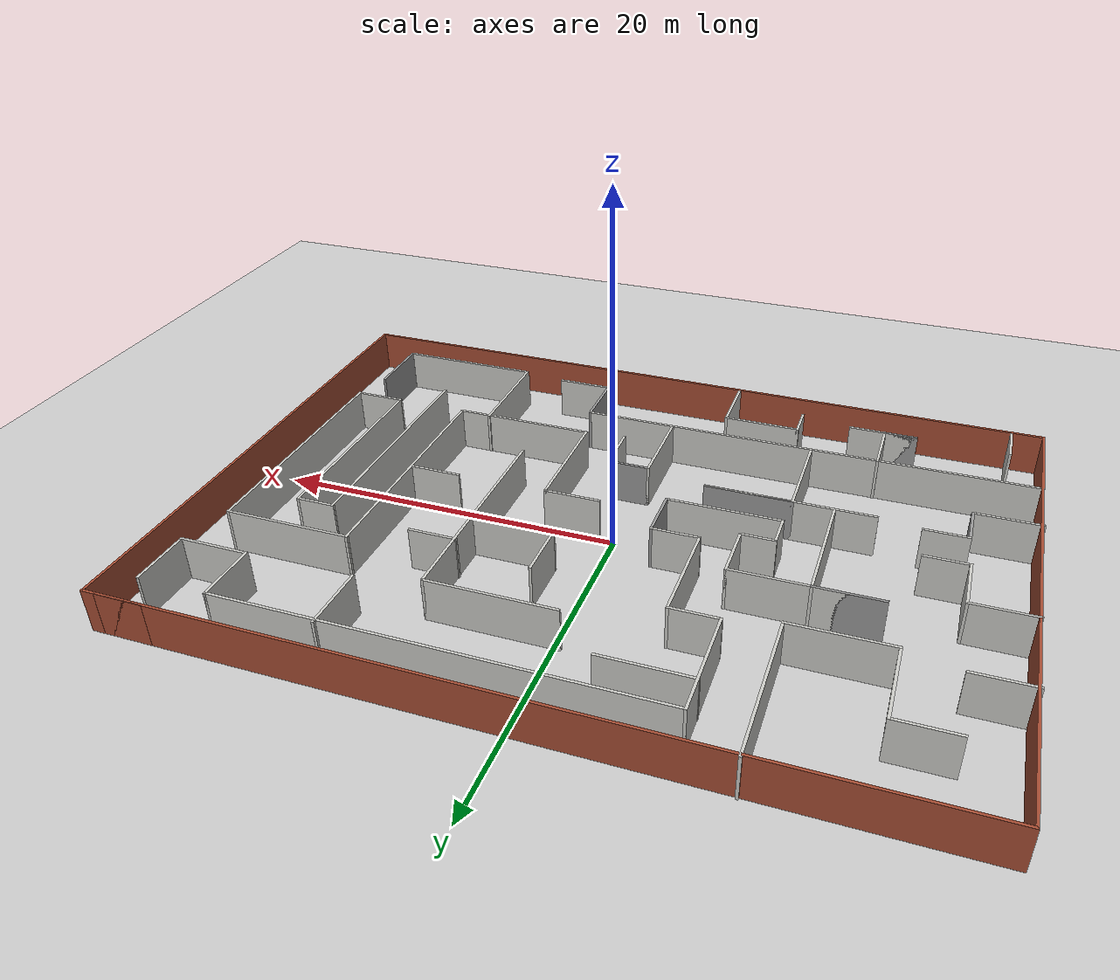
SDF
<sdf version="1.7">
 <world name="default">
  <light name="sun" type="directional">
   <pose>0 0 10 0 -0 0</pose>
   <diffuse>0.8 0.8 0.8 1</diffuse>
   <specular>0.2 0.2 0.2 1</specular>
   <attenuation>
    <range>1000</range>
    <constant>0.9</constant>
    <linear>0.01</linear>
    <quadratic>0.001</quadratic>
   </attenuation>
   <direction>-0.5 0.1 -0.9</direction>
   <spot><inner_angle>0</inner_angle><outer_angle>0</outer_angle><falloff>0</falloff></spot>
  </light>
  <model name="ground_plane">
   <static>1</static>
   <link name="link">
    <collision name="collision">
     <geometry><plane><normal>0 0 1</normal><size>100 100</size></plane></geometry>
     <surface><friction><ode><mu>100</mu><mu2>50</mu2></ode></friction></surface>
    </collision>
    <visual name="visual">
     <cast_shadows>0</cast_shadows>
     <geometry><plane><normal>0 0 1</normal><size>100 100</size></plane></geometry>
     <material>
      <script><uri>file://media/materials/scripts/gazebo.material</uri><name>Gazebo/Grey</name></script>
     </material>
    </visual>
   </link>
  </model>
  <gravity>0 0 -9.8</gravity>
  <magnetic_field>6e-06 2.3e-05 -4.2e-05</magnetic_field>
  <atmosphere type="adiabatic"/>
  <physics type="ode">
   <max_step_size>0.001</max_step_size>
   <real_time_factor>1</real_time_factor>
   <real_time_update_rate>1000</real_time_update_rate>
  </physics>
  <scene><ambient>0.4 0.4 0.4 1</ambient><background>0.7 0.7 0.7 1</background><shadows>1</shadows></scene>
  <audio><device>default</device></audio>
  <spherical_coordinates>
   <surface_model>EARTH_WGS84</surface_model>
   <latitude_deg>0</latitude_deg>
   <longitude_deg>0</longitude_deg>
   <elevation>0</elevation>
   <heading_deg>0</heading_deg>
  </spherical_coordinates>
  <model name="Maze_bt">
   <link name="Wall_100">
    <collision name="Wall_100_Collision">
     <geometry><box><size>5 0.15 2.5</size></box></geometry>
     <pose>0 0 1.25 0 -0 0</pose>
    </collision>
    <visual name="Wall_100_Visual">
     <pose>0 0 1.25 0 -0 0</pose>
     <geometry><box><size>5 0.15 2.5</size></box></geometry>
     <material>
      <script><uri>file://media/materials/scripts/gazebo.material</uri><name>Gazebo/CeilingTiled</name></script>
      <ambient>1 1 1 1</ambient>
     </material>
     <meta><layer>0</layer></meta>
    </visual>
    <pose>-5.29776 11.2419 0 0 -0 0</pose>
   </link>
   <link name="Wall_102">
    <collision name="Wall_102_Collision">
     <geometry><box><size>3 0.15 2.5</size></box></geometry>
     <pose>0 0 1.25 0 -0 0</pose>
    </collision>
    <visual name="Wall_102_Visual">
     <pose>0 0 1.25 0 -0 0</pose>
     <geometry><box><size>3 0.15 2.5</size></box></geometry>
     <material>
      <script><uri>file://media/materials/scripts/gazebo.material</uri><name>Gazebo/CeilingTiled</name></script>
      <ambient>1 1 1 1</ambient>
     </material>
     <meta><layer>0</layer></meta>
    </visual>
    <pose>10.6344 -0.214633 0 0 -0 3.14159</pose>
   </link>
   <link name="Wall_12">
    <collision name="Wall_12_Collision">
     <geometry><box><size>3.5 0.15 2.5</size></box></geometry>
     <pose>0 0 1.25 0 -0 0</pose>
    </collision>
    <visual name="Wall_12_Visual">
     <pose>0 0 1.25 0 -0 0</pose>
     <geometry><box><size>3.5 0.15 2.5</size></box></geometry>
     <material>
      <script><uri>file://media/materials/scripts/gazebo.material</uri><name>Gazebo/Bricks</name></script>
      <ambient>1 1 1 1</ambient>
     </material>
     <meta><layer>0</layer></meta>
    </visual>
    <pose>20.1781 14.8749 0 0 -0 3.14159</pose>
   </link>
   <link name="Wall_14">
    <collision name="Wall_14_Collision">
     <geometry><box><size>30 0.15 2.5</size></box></geometry>
     <pose>0 0 1.25 0 -0 0</pose>
    </collision>
    <visual name="Wall_14_Visual">
     <pose>0 0 1.25 0 -0 0</pose>
     <geometry><box><size>30 0.15 2.5</size></box></geometry>
     <material>
      <script><uri>file://media/materials/scripts/gazebo.material</uri><name>Gazebo/Bricks</name></script>
      <ambient>1 1 1 1</ambient>
     </material>
     <meta><layer>0</layer></meta>
    </visual>
    <pose>21.8531 -0.050149 0 0 -0 -1.5708</pose>
   </link>
   <link name="Wall_15">
    <collision name="Wall_15_Collision">
     <geometry><box><size>43.75 0.15 2.5</size></box></geometry>
     <pose>0 0 1.25 0 -0 0</pose>
    </collision>
    <visual name="Wall_15_Visual">
     <pose>0 0 1.25 0 -0 0</pose>
     <geometry><box><size>43.75 0.15 2.5</size></box></geometry>
     <material>
      <script><uri>file://media/materials/scripts/gazebo.material</uri><name>Gazebo/Bricks</name></script>
      <ambient>1 1 1 1</ambient>
     </material>
     <meta><layer>0</layer></meta>
    </visual>
    <pose>0.053126 -14.9751 0 0 -0 3.14159</pose>
   </link>
   <link name="Wall_16">
    <collision name="Wall_16_Collision">
     <geometry><box><size>30 0.15 2.5</size></box></geometry>
     <pose>0 0 1.25 0 -0 0</pose>
    </collision>
    <visual name="Wall_16_Visual">
     <pose>0 0 1.25 0 -0 0</pose>
     <geometry><box><size>30 0.15 2.5</size></box></geometry>
     <material>
      <script><uri>file://media/materials/scripts/gazebo.material</uri><name>Gazebo/Bricks</name></script>
      <ambient>1 1 1 1</ambient>
     </material>
     <meta><layer>0</layer></meta>
    </visual>
    <pose>-21.7469 -0.050149 0 0 -0 1.5708</pose>
   </link>
   <link name="Wall_18">
    <collision name="Wall_18_Collision">
     <geometry><box><size>8.75 0.15 2.5</size></box></geometry>
     <pose>0 0 1.25 0 -0 0</pose>
    </collision>
    <visual name="Wall_18_Visual">
     <pose>0 0 1.25 0 -0 0</pose>
     <geometry><box><size>8.75 0.15 2.5</size></box></geometry>
     <material>
      <script><uri>file://media/materials/scripts/gazebo.material</uri><name>Gazebo/CeilingTiled</name></script>
      <ambient>1 1 1 1</ambient>
     </material>
     <meta><layer>0</layer></meta>
    </visual>
    <pose>-10.4675 10.6752 0 0 -0 -1.5708</pose>
   </link>
   <link name="Wall_19">
    <collision name="Wall_19_Collision">
     <geometry><box><size>5.5 0.15 2.5</size></box></geometry>
     <pose>0 0 1.25 0 -0 0</pose>
    </collision>
    <visual name="Wall_19_Visual">
     <pose>0 0 1.25 0 -0 0</pose>
     <geometry><box><size>5.5 0.15 2.5</size></box></geometry>
     <material>
      <script><uri>file://media/materials/scripts/gazebo.material</uri><name>Gazebo/CeilingTiled</name></script>
      <ambient>1 1 1 1</ambient>
     </material>
     <meta><layer>0</layer></meta>
    </visual>
    <pose>-13.1425 6.37515 0 0 -0 3.14159</pose>
   </link>
   <link name="Wall_20">
    <collision name="Wall_20_Collision">
     <geometry><box><size>4.75 0.15 2.5</size></box></geometry>
     <pose>0 0 1.25 0 -0 0</pose>
    </collision>
    <visual name="Wall_20_Visual">
     <pose>0 0 1.25 0 -0 0</pose>
     <geometry><box><size>4.75 0.15 2.5</size></box></geometry>
     <material>
      <script><uri>file://media/materials/scripts/gazebo.material</uri><name>Gazebo/CeilingTiled</name></script>
      <ambient>1 1 1 1</ambient>
     </material>
     <meta><layer>0</layer></meta>
    </visual>
    <pose>-15.8175 8.67515 0 0 -0 1.5708</pose>
   </link>
   <link name="Wall_21">
    <collision name="Wall_21_Collision">
     <geometry><box><size>3.25 0.15 2.5</size></box></geometry>
     <pose>0 0 1.25 0 -0 0</pose>
    </collision>
    <visual name="Wall_21_Visual">
     <pose>0 0 1.25 0 -0 0</pose>
     <geometry><box><size>3.25 0.15 2.5</size></box></geometry>
     <material>
      <script><uri>file://media/materials/scripts/gazebo.material</uri><name>Gazebo/CeilingTiled</name></script>
      <ambient>1 1 1 1</ambient>
     </material>
     <meta><layer>0</layer></meta>
    </visual>
    <pose>-17.3675 10.9752 0 0 -0 3.14159</pose>
   </link>
   <link name="Wall_23">
    <collision name="Wall_23_Collision">
     <geometry><box><size>3.25 0.15 2.5</size></box></geometry>
     <pose>0 0 1.25 0 -0 0</pose>
    </collision>
    <visual name="Wall_23_Visual">
     <pose>0 0 1.25 0 -0 0</pose>
     <geometry><box><size>3.25 0.15 2.5</size></box></geometry>
     <material>
      <script><uri>file://media/materials/scripts/gazebo.material</uri><name>Gazebo/CeilingTiled</name></script>
      <ambient>1 1 1 1</ambient>
     </material>
     <meta><layer>0</layer></meta>
    </visual>
    <pose>-20.3002 7.03806 0 0 -0 0</pose>
   </link>
   <link name="Wall_25">
    <collision name="Wall_25_Collision">
     <geometry><box><size>3.5 0.15 2.5</size></box></geometry>
     <pose>0 0 1.25 0 -0 0</pose>
    </collision>
    <visual name="Wall_25_Visual">
     <pose>0 0 1.25 0 -0 0</pose>
     <geometry><box><size>3.5 0.15 2.5</size></box></geometry>
     <material>
      <script><uri>file://media/materials/scripts/gazebo.material</uri><name>Gazebo/CeilingTiled</name></script>
      <ambient>1 1 1 1</ambient>
     </material>
     <meta><layer>0</layer></meta>
    </visual>
    <pose>-20.1136 2.17735 0 0 -0 0</pose>
   </link>
   <link name="Wall_26">
    <collision name="Wall_26_Collision">
     <geometry><box><size>3.25 0.15 2.5</size></box></geometry>
     <pose>0 0 1.25 0 -0 0</pose>
    </collision>
    <visual name="Wall_26_Visual">
     <pose>0 0 1.25 0 -0 0</pose>
     <geometry><box><size>3.25 0.15 2.5</size></box></geometry>
     <material>
      <script><uri>file://media/materials/scripts/gazebo.material</uri><name>Gazebo/CeilingTiled</name></script>
      <ambient>1 1 1 1</ambient>
     </material>
     <meta><layer>0</layer></meta>
    </visual>
    <pose>-18.4386 0.627354 0 0 -0 -1.5708</pose>
   </link>
   <link name="Wall_27">
    <collision name="Wall_27_Collision">
     <geometry><box><size>2.5 0.15 2.5</size></box></geometry>
     <pose>0 0 1.25 0 -0 0</pose>
    </collision>
    <visual name="Wall_27_Visual">
     <pose>0 0 1.25 0 -0 0</pose>
     <geometry><box><size>2.5 0.15 2.5</size></box></geometry>
     <material>
      <script><uri>file://media/materials/scripts/gazebo.material</uri><name>Gazebo/CeilingTiled</name></script>
      <ambient>1 1 1 1</ambient>
     </material>
     <meta><layer>0</layer></meta>
    </visual>
    <pose>-17.2636 -0.922646 0 0 -0 0</pose>
   </link>
   <link name="Wall_30">
    <collision name="Wall_30_Collision">
     <geometry><box><size>3.75 0.15 2.5</size></box></geometry>
     <pose>0 0 1.25 0 -0 0</pose>
    </collision>
    <visual name="Wall_30_Visual">
     <pose>0 0 1.25 0 -0 0</pose>
     <geometry><box><size>3.75 0.15 2.5</size></box></geometry>
     <material>
      <script><uri>file://media/materials/scripts/gazebo.material</uri><name>Gazebo/CeilingTiled</name></script>
      <ambient>1 1 1 1</ambient>
     </material>
     <meta><layer>0</layer></meta>
    </visual>
    <pose>-20.0531 -5.59136 0 0 -0 0</pose>
   </link>
   <link name="Wall_31">
    <collision name="Wall_31_Collision">
     <geometry><box><size>2.5 0.15 2.5</size></box></geometry>
     <pose>0 0 1.25 0 -0 0</pose>
    </collision>
    <visual name="Wall_31_Visual">
     <pose>0 0 1.25 0 -0 0</pose>
     <geometry><box><size>2.5 0.15 2.5</size></box></geometry>
     <material>
      <script><uri>file://media/materials/scripts/gazebo.material</uri><name>Gazebo/Grey</name></script>
      <ambient>1 1 1 1</ambient>
     </material>
     <meta><layer>0</layer></meta>
    </visual>
    <pose>-18.2531 -4.41636 0 0 -0 1.5708</pose>
   </link>
   <link name="Wall_32">
    <collision name="Wall_32_Collision">
     <geometry><box><size>2.5 0.15 2.5</size></box></geometry>
     <pose>0 0 1.25 0 -0 0</pose>
    </collision>
    <visual name="Wall_32_Visual">
     <pose>0 0 1.25 0 -0 0</pose>
     <geometry><box><size>2.5 0.15 2.5</size></box></geometry>
     <material>
      <script><uri>file://media/materials/scripts/gazebo.material</uri><name>Gazebo/CeilingTiled</name></script>
      <ambient>1 1 1 1</ambient>
     </material>
     <meta><layer>0</layer></meta>
    </visual>
    <pose>-17.0781 -3.24135 0 0 -0 0</pose>
   </link>
   <link name="Wall_34">
    <collision name="Wall_34_Collision">
     <geometry><box><size>26.5 0.15 2.5</size></box></geometry>
     <pose>0 0 1.25 0 -0 0</pose>
    </collision>
    <visual name="Wall_34_Visual">
     <pose>0 0 1.25 0 -0 0</pose>
     <geometry><box><size>26.5 0.15 2.5</size></box></geometry>
     <material>
      <script><uri>file://media/materials/scripts/gazebo.material</uri><name>Gazebo/CeilingTiled</name></script>
      <ambient>1 1 1 1</ambient>
     </material>
     <meta><layer>0</layer></meta>
    </visual>
    <pose>-8.58455 -9.24083 0 0 -0 0</pose>
   </link>
   <link name="Wall_35">
    <collision name="Wall_35_Collision">
     <geometry><box><size>3.5 0.15 2.5</size></box></geometry>
     <pose>0 0 1.25 0 -0 0</pose>
    </collision>
    <visual name="Wall_35_Visual">
     <pose>0 0 1.25 0 -0 0</pose>
     <geometry><box><size>3.5 0.15 2.5</size></box></geometry>
     <material>
      <script><uri>file://media/materials/scripts/gazebo.material</uri><name>Gazebo/Grey</name></script>
      <ambient>1 1 1 1</ambient>
     </material>
     <meta><layer>0</layer></meta>
    </visual>
    <pose>4.59045 -10.9158 0 0 -0 -1.5708</pose>
   </link>
   <link name="Wall_36">
    <collision name="Wall_36_Collision">
     <geometry><box><size>3.25 0.15 2.5</size></box></geometry>
     <pose>0 0 1.25 0 -0 0</pose>
    </collision>
    <visual name="Wall_36_Visual">
     <pose>0 0 1.25 0 -0 0</pose>
     <geometry><box><size>3.25 0.15 2.5</size></box></geometry>
     <material>
      <script><uri>file://media/materials/scripts/gazebo.material</uri><name>Gazebo/CeilingTiled</name></script>
      <ambient>1 1 1 1</ambient>
     </material>
     <meta><layer>0</layer></meta>
    </visual>
    <pose>6.14045 -12.5908 0 0 -0 0</pose>
   </link>
   <link name="Wall_38">
    <collision name="Wall_38_Collision">
     <geometry><box><size>3.5 0.15 2.5</size></box></geometry>
     <pose>0 0 1.25 0 -0 0</pose>
    </collision>
    <visual name="Wall_38_Visual">
     <pose>0 0 1.25 0 -0 0</pose>
     <geometry><box><size>3.5 0.15 2.5</size></box></geometry>
     <material>
      <script><uri>file://media/materials/scripts/gazebo.material</uri><name>Gazebo/CeilingTiled</name></script>
      <ambient>1 1 1 1</ambient>
     </material>
     <meta><layer>0</layer></meta>
    </visual>
    <pose>-12.7882 -10.8624 0 0 -0 -1.5708</pose>
   </link>
   <link name="Wall_39">
    <collision name="Wall_39_Collision">
     <geometry><box><size>2 0.15 2.5</size></box></geometry>
     <pose>0 0 1.25 0 -0 0</pose>
    </collision>
    <visual name="Wall_39_Visual">
     <pose>0 0 1.25 0 -0 0</pose>
     <geometry><box><size>2 0.15 2.5</size></box></geometry>
     <material>
      <script><uri>file://media/materials/scripts/gazebo.material</uri><name>Gazebo/Grey</name></script>
      <ambient>1 1 1 1</ambient>
     </material>
     <meta><layer>0</layer></meta>
    </visual>
    <pose>-13.7132 -12.5374 0 0 -0 3.14159</pose>
   </link>
   <link name="Wall_40">
    <collision name="Wall_40_Collision">
     <geometry><box><size>4 0.15 2.5</size></box></geometry>
     <pose>0 0 1.25 0 -0 0</pose>
    </collision>
    <visual name="Wall_40_Visual">
     <pose>0 0 1.25 0 -0 0</pose>
     <geometry><box><size>4 0.15 2.5</size></box></geometry>
     <material>
      <script><uri>file://media/materials/scripts/gazebo.material</uri><name>Gazebo/CeilingTiled</name></script>
      <ambient>1 1 1 1</ambient>
     </material>
     <meta><layer>0</layer></meta>
    </visual>
    <pose>-12.7132 -12.5374 0 0 -0 0</pose>
   </link>
   <link name="Wall_42">
    <collision name="Wall_42_Collision">
     <geometry><box><size>2.5 0.15 2.5</size></box></geometry>
     <pose>0 0 1.25 0 -0 0</pose>
    </collision>
    <visual name="Wall_42_Visual">
     <pose>0 0 1.25 0 -0 0</pose>
     <geometry><box><size>2.5 0.15 2.5</size></box></geometry>
     <material>
      <script><uri>file://media/materials/scripts/gazebo.material</uri><name>Gazebo/CeilingTiled</name></script>
      <ambient>1 1 1 1</ambient>
     </material>
     <meta><layer>0</layer></meta>
    </visual>
    <pose>-19.9347 -13.6172 0 0 -0 -1.5708</pose>
   </link>
   <link name="Wall_45">
    <collision name="Wall_45_Collision">
     <geometry><box><size>3.75 0.15 2.5</size></box></geometry>
     <pose>0 0 1.25 0 -0 0</pose>
    </collision>
    <visual name="Wall_45_Visual">
     <pose>0 0 1.25 0 -0 0</pose>
     <geometry><box><size>3.75 0.15 2.5</size></box></geometry>
     <material>
      <script><uri>file://media/materials/scripts/gazebo.material</uri><name>Gazebo/CeilingTiled</name></script>
      <ambient>1 1 1 1</ambient>
     </material>
     <meta><layer>0</layer></meta>
    </visual>
    <pose>-3.4557 -13.0708 0 0 -0 1.5708</pose>
   </link>
   <link name="Wall_46">
    <collision name="Wall_46_Collision">
     <geometry><box><size>4.5 0.15 2.5</size></box></geometry>
     <pose>0 0 1.25 0 -0 0</pose>
    </collision>
    <visual name="Wall_46_Visual">
     <pose>0 0 1.25 0 -0 0</pose>
     <geometry><box><size>4.5 0.15 2.5</size></box></geometry>
     <material>
      <script><uri>file://media/materials/scripts/gazebo.material</uri><name>Gazebo/CeilingTiled</name></script>
      <ambient>1 1 1 1</ambient>
     </material>
     <meta><layer>0</layer></meta>
    </visual>
    <pose>-5.6307 -11.2708 0 0 -0 3.14159</pose>
   </link>
   <link name="Wall_47">
    <collision name="Wall_47_Collision">
     <geometry><box><size>2 0.15 2.5</size></box></geometry>
     <pose>0 0 1.25 0 -0 0</pose>
    </collision>
    <visual name="Wall_47_Visual">
     <pose>0 0 1.25 0 -0 0</pose>
     <geometry><box><size>2 0.15 2.5</size></box></geometry>
     <material>
      <script><uri>file://media/materials/scripts/gazebo.material</uri><name>Gazebo/CeilingTiled</name></script>
      <ambient>1 1 1 1</ambient>
     </material>
     <meta><layer>0</layer></meta>
    </visual>
    <pose>-7.8057 -12.1958 0 0 -0 -1.5708</pose>
   </link>
   <link name="Wall_49">
    <collision name="Wall_49_Collision">
     <geometry><box><size>5.75 0.15 2.5</size></box></geometry>
     <pose>0 0 1.25 0 -0 0</pose>
    </collision>
    <visual name="Wall_49_Visual">
     <pose>0 0 1.25 0 -0 0</pose>
     <geometry><box><size>5.75 0.15 2.5</size></box></geometry>
     <material>
      <script><uri>file://media/materials/scripts/gazebo.material</uri><name>Gazebo/CeilingTiled</name></script>
      <ambient>1 1 1 1</ambient>
     </material>
     <meta><layer>0</layer></meta>
    </visual>
    <pose>-8.98861 -6.39024 0 0 -0 1.5708</pose>
   </link>
   <link name="Wall_5">
    <collision name="Wall_5_Collision">
     <geometry><box><size>43 0.15 2.5</size></box></geometry>
     <pose>0 0 1.25 0 -0 0</pose>
    </collision>
    <visual name="Wall_5_Visual">
     <pose>0 0 1.25 0 -0 0</pose>
     <geometry><box><size>43 0.15 2.5</size></box></geometry>
     <material>
      <script><uri>file://media/materials/scripts/gazebo.material</uri><name>Gazebo/Bricks</name></script>
      <ambient>1 1 1 1</ambient>
     </material>
     <meta><layer>0</layer></meta>
    </visual>
    <pose>-0.321874 14.8749 0 0 -0 0</pose>
   </link>
   <link name="Wall_50">
    <collision name="Wall_50_Collision">
     <geometry><box><size>5 0.15 2.5</size></box></geometry>
     <pose>0 0 1.25 0 -0 0</pose>
    </collision>
    <visual name="Wall_50_Visual">
     <pose>0 0 1.25 0 -0 0</pose>
     <geometry><box><size>5 0.15 2.5</size></box></geometry>
     <material>
      <script><uri>file://media/materials/scripts/gazebo.material</uri><name>Gazebo/Grey</name></script>
      <ambient>1 1 1 1</ambient>
     </material>
     <meta><layer>0</layer></meta>
    </visual>
    <pose>-6.56361 -3.59024 0 0 -0 0</pose>
   </link>
   <link name="Wall_51">
    <collision name="Wall_51_Collision">
     <geometry><box><size>9.5 0.15 2.5</size></box></geometry>
     <pose>0 0 1.25 0 -0 0</pose>
    </collision>
    <visual name="Wall_51_Visual">
     <pose>0 0 1.25 0 -0 0</pose>
     <geometry><box><size>9.5 0.15 2.5</size></box></geometry>
     <material>
      <script><uri>file://media/materials/scripts/gazebo.material</uri><name>Gazebo/CeilingTiled</name></script>
      <ambient>1 1 1 1</ambient>
     </material>
     <meta><layer>0</layer></meta>
    </visual>
    <pose>-8.81361 -3.59024 0 0 -0 3.14159</pose>
   </link>
   <link name="Wall_54">
    <collision name="Wall_54_Collision">
     <geometry><box><size>7 0.15 2.5</size></box></geometry>
     <pose>0 0 1.25 0 -0 0</pose>
    </collision>
    <visual name="Wall_54_Visual">
     <pose>0 0 1.25 0 -0 0</pose>
     <geometry><box><size>7 0.15 2.5</size></box></geometry>
     <material>
      <script><uri>file://media/materials/scripts/gazebo.material</uri><name>Gazebo/CeilingTiled</name></script>
      <ambient>1 1 1 1</ambient>
     </material>
     <meta><layer>0</layer></meta>
    </visual>
    <pose>-11.2485 -0.115577 0 0 -0 1.5708</pose>
   </link>
   <link name="Wall_55">
    <collision name="Wall_55_Collision">
     <geometry><box><size>3.75 0.15 2.5</size></box></geometry>
     <pose>0 0 1.25 0 -0 0</pose>
    </collision>
    <visual name="Wall_55_Visual">
     <pose>0 0 1.25 0 -0 0</pose>
     <geometry><box><size>3.75 0.15 2.5</size></box></geometry>
     <material>
      <script><uri>file://media/materials/scripts/gazebo.material</uri><name>Gazebo/Grey</name></script>
      <ambient>1 1 1 1</ambient>
     </material>
     <meta><layer>0</layer></meta>
    </visual>
    <pose>-13.0485 3.30942 0 0 -0 3.14159</pose>
   </link>
   <link name="Wall_56">
    <collision name="Wall_56_Collision">
     <geometry><box><size>8 0.15 2.5</size></box></geometry>
     <pose>0 0 1.25 0 -0 0</pose>
    </collision>
    <visual name="Wall_56_Visual">
     <pose>0 0 1.25 0 -0 0</pose>
     <geometry><box><size>8 0.15 2.5</size></box></geometry>
     <material>
      <script><uri>file://media/materials/scripts/gazebo.material</uri><name>Gazebo/CeilingTiled</name></script>
      <ambient>1 1 1 1</ambient>
     </material>
     <meta><layer>0</layer></meta>
    </visual>
    <pose>-10.9235 3.30942 0 0 -0 0</pose>
   </link>
   <link name="Wall_57">
    <collision name="Wall_57_Collision">
     <geometry><box><size>3.25 0.15 2.5</size></box></geometry>
     <pose>0 0 1.25 0 -0 0</pose>
    </collision>
    <visual name="Wall_57_Visual">
     <pose>0 0 1.25 0 -0 0</pose>
     <geometry><box><size>3.25 0.15 2.5</size></box></geometry>
     <material>
      <script><uri>file://media/materials/scripts/gazebo.material</uri><name>Gazebo/CeilingTiled</name></script>
      <ambient>1 1 1 1</ambient>
     </material>
     <meta><layer>0</layer></meta>
    </visual>
    <pose>-6.99848 1.75942 0 0 -0 -1.5708</pose>
   </link>
   <link name="Wall_58">
    <collision name="Wall_58_Collision">
     <geometry><box><size>2 0.15 2.5</size></box></geometry>
     <pose>0 0 1.25 0 -0 0</pose>
    </collision>
    <visual name="Wall_58_Visual">
     <pose>0 0 1.25 0 -0 0</pose>
     <geometry><box><size>2 0.15 2.5</size></box></geometry>
     <material>
      <script><uri>file://media/materials/scripts/gazebo.material</uri><name>Gazebo/CeilingTiled</name></script>
      <ambient>1 1 1 1</ambient>
     </material>
     <meta><layer>0</layer></meta>
    </visual>
    <pose>-7.92348 0.209423 0 0 -0 3.14159</pose>
   </link>
   <link name="Wall_59">
    <collision name="Wall_59_Collision">
     <geometry><box><size>2 0.15 2.5</size></box></geometry>
     <pose>0 0 1.25 0 -0 0</pose>
    </collision>
    <visual name="Wall_59_Visual">
     <pose>0 0 1.25 0 -0 0</pose>
     <geometry><box><size>2 0.15 2.5</size></box></geometry>
     <material>
      <script><uri>file://media/materials/scripts/gazebo.material</uri><name>Gazebo/CeilingTiled</name></script>
      <ambient>1 1 1 1</ambient>
     </material>
     <meta><layer>0</layer></meta>
    </visual>
    <pose>-8.84848 -0.715577 0 0 -0 -1.5708</pose>
   </link>
   <link name="Wall_60">
    <collision name="Wall_60_Collision">
     <geometry><box><size>6.5 0.15 2.5</size></box></geometry>
     <pose>0 0 1.25 0 -0 0</pose>
    </collision>
    <visual name="Wall_60_Visual">
     <pose>0 0 1.25 0 -0 0</pose>
     <geometry><box><size>6.5 0.15 2.5</size></box></geometry>
     <material>
      <script><uri>file://media/materials/scripts/gazebo.material</uri><name>Gazebo/CeilingTiled</name></script>
      <ambient>1 1 1 1</ambient>
     </material>
     <meta><layer>0</layer></meta>
    </visual>
    <pose>-5.67348 -1.64058 0 0 -0 0</pose>
   </link>
   <link name="Wall_61">
    <collision name="Wall_61_Collision">
     <geometry><box><size>3 0.15 2.5</size></box></geometry>
     <pose>0 0 1.25 0 -0 0</pose>
    </collision>
    <visual name="Wall_61_Visual">
     <pose>0 0 1.25 0 -0 0</pose>
     <geometry><box><size>3 0.15 2.5</size></box></geometry>
     <material>
      <script><uri>file://media/materials/scripts/gazebo.material</uri><name>Gazebo/Grey</name></script>
      <ambient>1 1 1 1</ambient>
     </material>
     <meta><layer>0</layer></meta>
    </visual>
    <pose>-2.49848 -0.215577 0 0 -0 1.5708</pose>
   </link>
   <link name="Wall_62">
    <collision name="Wall_62_Collision">
     <geometry><box><size>2.75 0.15 2.5</size></box></geometry>
     <pose>0 0 1.25 0 -0 0</pose>
    </collision>
    <visual name="Wall_62_Visual">
     <pose>0 0 1.25 0 -0 0</pose>
     <geometry><box><size>2.75 0.15 2.5</size></box></geometry>
     <material>
      <script><uri>file://media/materials/scripts/gazebo.material</uri><name>Gazebo/CeilingTiled</name></script>
      <ambient>1 1 1 1</ambient>
     </material>
     <meta><layer>0</layer></meta>
    </visual>
    <pose>-3.79848 1.20942 0 0 -0 3.14159</pose>
   </link>
   <link name="Wall_63">
    <collision name="Wall_63_Collision">
     <geometry><box><size>6 0.15 2.5</size></box></geometry>
     <pose>0 0 1.25 0 -0 0</pose>
    </collision>
    <visual name="Wall_63_Visual">
     <pose>0 0 1.25 0 -0 0</pose>
     <geometry><box><size>6 0.15 2.5</size></box></geometry>
     <material>
      <script><uri>file://media/materials/scripts/gazebo.material</uri><name>Gazebo/CeilingTiled</name></script>
      <ambient>1 1 1 1</ambient>
     </material>
     <meta><layer>0</layer></meta>
    </visual>
    <pose>-5.09848 4.13442 0 0 -0 1.5708</pose>
   </link>
   <link name="Wall_64">
    <collision name="Wall_64_Collision">
     <geometry><box><size>2.75 0.15 2.5</size></box></geometry>
     <pose>0 0 1.25 0 -0 0</pose>
    </collision>
    <visual name="Wall_64_Visual">
     <pose>0 0 1.25 0 -0 0</pose>
     <geometry><box><size>2.75 0.15 2.5</size></box></geometry>
     <material>
      <script><uri>file://media/materials/scripts/gazebo.material</uri><name>Gazebo/CeilingTiled</name></script>
      <ambient>1 1 1 1</ambient>
     </material>
     <meta><layer>0</layer></meta>
    </visual>
    <pose>-6.39848 7.05942 0 0 -0 3.14159</pose>
   </link>
   <link name="Wall_65">
    <collision name="Wall_65_Collision">
     <geometry><box><size>6.25 0.15 2.5</size></box></geometry>
     <pose>0 0 1.25 0 -0 0</pose>
    </collision>
    <visual name="Wall_65_Visual">
     <pose>0 0 1.25 0 -0 0</pose>
     <geometry><box><size>6.25 0.15 2.5</size></box></geometry>
     <material>
      <script><uri>file://media/materials/scripts/gazebo.material</uri><name>Gazebo/CeilingTiled</name></script>
      <ambient>1 1 1 1</ambient>
     </material>
     <meta><layer>0</layer></meta>
    </visual>
    <pose>-7.69848 10.1094 0 0 -0 1.5708</pose>
   </link>
   <link name="Wall_66">
    <collision name="Wall_66_Collision">
     <geometry><box><size>24 0.15 2.5</size></box></geometry>
     <pose>0 0 1.25 0 -0 0</pose>
    </collision>
    <visual name="Wall_66_Visual">
     <pose>0 0 1.25 0 -0 0</pose>
     <geometry><box><size>24 0.15 2.5</size></box></geometry>
     <material>
      <script><uri>file://media/materials/scripts/gazebo.material</uri><name>Gazebo/CeilingTiled</name></script>
      <ambient>1 1 1 1</ambient>
     </material>
     <meta><layer>0</layer></meta>
    </visual>
    <pose>4.22652 13.1594 0 0 -0 0</pose>
   </link>
   <link name="Wall_67">
    <collision name="Wall_67_Collision">
     <geometry><box><size>3.5 0.15 2.5</size></box></geometry>
     <pose>0 0 1.25 0 -0 0</pose>
    </collision>
    <visual name="Wall_67_Visual">
     <pose>0 0 1.25 0 -0 0</pose>
     <geometry><box><size>3.5 0.15 2.5</size></box></geometry>
     <material>
      <script><uri>file://media/materials/scripts/gazebo.material</uri><name>Gazebo/CeilingTiled</name></script>
      <ambient>1 1 1 1</ambient>
     </material>
     <meta><layer>0</layer></meta>
    </visual>
    <pose>16.1515 11.4844 0 0 -0 -1.5708</pose>
   </link>
   <link name="Wall_68">
    <collision name="Wall_68_Collision">
     <geometry><box><size>4 0.15 2.5</size></box></geometry>
     <pose>0 0 1.25 0 -0 0</pose>
    </collision>
    <visual name="Wall_68_Visual">
     <pose>0 0 1.25 0 -0 0</pose>
     <geometry><box><size>4 0.15 2.5</size></box></geometry>
     <material>
      <script><uri>file://media/materials/scripts/gazebo.material</uri><name>Gazebo/CeilingTiled</name></script>
      <ambient>1 1 1 1</ambient>
     </material>
     <meta><layer>0</layer></meta>
    </visual>
    <pose>18.0765 9.80942 0 0 -0 0</pose>
   </link>
   <link name="Wall_69">
    <collision name="Wall_69_Collision">
     <geometry><box><size>3.5 0.15 2.5</size></box></geometry>
     <pose>0 0 1.25 0 -0 0</pose>
    </collision>
    <visual name="Wall_69_Visual">
     <pose>0 0 1.25 0 -0 0</pose>
     <geometry><box><size>3.5 0.15 2.5</size></box></geometry>
     <material>
      <script><uri>file://media/materials/scripts/gazebo.material</uri><name>Gazebo/CeilingTiled</name></script>
      <ambient>1 1 1 1</ambient>
     </material>
     <meta><layer>0</layer></meta>
    </visual>
    <pose>20.0015 11.4844 0 0 -0 1.5708</pose>
   </link>
   <link name="Wall_71">
    <collision name="Wall_71_Collision">
     <geometry><box><size>7.25 0.15 2.5</size></box></geometry>
     <pose>0 0 1.25 0 -0 0</pose>
    </collision>
    <visual name="Wall_71_Visual">
     <pose>0 0 1.25 0 -0 0</pose>
     <geometry><box><size>7.25 0.15 2.5</size></box></geometry>
     <material>
      <script><uri>file://media/materials/scripts/gazebo.material</uri><name>Gazebo/CeilingTiled</name></script>
      <ambient>1 1 1 1</ambient>
     </material>
     <meta><layer>0</layer></meta>
    </visual>
    <pose>3.2242 8.88868 0 0 -0 0</pose>
   </link>
   <link name="Wall_72">
    <collision name="Wall_72_Collision">
     <geometry><box><size>12.75 0.15 2.5</size></box></geometry>
     <pose>0 0 1.25 0 -0 0</pose>
    </collision>
    <visual name="Wall_72_Visual">
     <pose>0 0 1.25 0 -0 0</pose>
     <geometry><box><size>12.75 0.15 2.5</size></box></geometry>
     <material>
      <script><uri>file://media/materials/scripts/gazebo.material</uri><name>Gazebo/CeilingTiled</name></script>
      <ambient>1 1 1 1</ambient>
     </material>
     <meta><layer>0</layer></meta>
    </visual>
    <pose>6.7742 2.58868 0 0 -0 -1.5708</pose>
   </link>
   <link name="Wall_74">
    <collision name="Wall_74_Collision">
     <geometry><box><size>3.25 0.15 2.5</size></box></geometry>
     <pose>0 0 1.25 0 -0 0</pose>
    </collision>
    <visual name="Wall_74_Visual">
     <pose>0 0 1.25 0 -0 0</pose>
     <geometry><box><size>3.25 0.15 2.5</size></box></geometry>
     <material>
      <script><uri>file://media/materials/scripts/gazebo.material</uri><name>Gazebo/CeilingTiled</name></script>
      <ambient>1 1 1 1</ambient>
     </material>
     <meta><layer>0</layer></meta>
    </visual>
    <pose>2.46175 -0.312198 0 0 -0 0</pose>
   </link>
   <link name="Wall_75">
    <collision name="Wall_75_Collision">
     <geometry><box><size>6.75 0.15 2.5</size></box></geometry>
     <pose>0 0 1.25 0 -0 0</pose>
    </collision>
    <visual name="Wall_75_Visual">
     <pose>0 0 1.25 0 -0 0</pose>
     <geometry><box><size>6.75 0.15 2.5</size></box></geometry>
     <material>
      <script><uri>file://media/materials/scripts/gazebo.material</uri><name>Gazebo/CeilingTiled</name></script>
      <ambient>1 1 1 1</ambient>
     </material>
     <meta><layer>0</layer></meta>
    </visual>
    <pose>4.01175 -3.6122 0 0 -0 -1.5708</pose>
   </link>
   <link name="Wall_76">
    <collision name="Wall_76_Collision">
     <geometry><box><size>8.25 0.15 2.5</size></box></geometry>
     <pose>0 0 1.25 0 -0 0</pose>
    </collision>
    <visual name="Wall_76_Visual">
     <pose>0 0 1.25 0 -0 0</pose>
     <geometry><box><size>8.25 0.15 2.5</size></box></geometry>
     <material>
      <script><uri>file://media/materials/scripts/gazebo.material</uri><name>Gazebo/CeilingTiled</name></script>
      <ambient>1 1 1 1</ambient>
     </material>
     <meta><layer>0</layer></meta>
    </visual>
    <pose>8.06175 -6.9122 0 0 -0 0</pose>
   </link>
   <link name="Wall_77">
    <collision name="Wall_77_Collision">
     <geometry><box><size>14 0.15 2.5</size></box></geometry>
     <pose>0 0 1.25 0 -0 0</pose>
    </collision>
    <visual name="Wall_77_Visual">
     <pose>0 0 1.25 0 -0 0</pose>
     <geometry><box><size>14 0.15 2.5</size></box></geometry>
     <material>
      <script><uri>file://media/materials/scripts/gazebo.material</uri><name>Gazebo/CeilingTiled</name></script>
      <ambient>1 1 1 1</ambient>
     </material>
     <meta><layer>0</layer></meta>
    </visual>
    <pose>12.1118 0.012802 0 0 -0 1.5708</pose>
   </link>
   <link name="Wall_78">
    <collision name="Wall_78_Collision">
     <geometry><box><size>7.25 0.15 2.5</size></box></geometry>
     <pose>0 0 1.25 0 -0 0</pose>
    </collision>
    <visual name="Wall_78_Visual">
     <pose>0 0 1.25 0 -0 0</pose>
     <geometry><box><size>7.25 0.15 2.5</size></box></geometry>
     <material>
      <script><uri>file://media/materials/scripts/gazebo.material</uri><name>Gazebo/CeilingTiled</name></script>
      <ambient>1 1 1 1</ambient>
     </material>
     <meta><layer>0</layer></meta>
    </visual>
    <pose>15.6617 6.9378 0 0 -0 0</pose>
   </link>
   <link name="Wall_79">
    <collision name="Wall_79_Collision">
     <geometry><box><size>14 0.15 2.5</size></box></geometry>
     <pose>0 0 1.25 0 -0 0</pose>
    </collision>
    <visual name="Wall_79_Visual">
     <pose>0 0 1.25 0 -0 0</pose>
     <geometry><box><size>14 0.15 2.5</size></box></geometry>
     <material>
      <script><uri>file://media/materials/scripts/gazebo.material</uri><name>Gazebo/CeilingTiled</name></script>
      <ambient>1 1 1 1</ambient>
     </material>
     <meta><layer>0</layer></meta>
    </visual>
    <pose>19.2117 0.012802 0 0 -0 -1.5708</pose>
   </link>
   <link name="Wall_80">
    <collision name="Wall_80_Collision">
     <geometry><box><size>3 0.15 2.5</size></box></geometry>
     <pose>0 0 1.25 0 -0 0</pose>
    </collision>
    <visual name="Wall_80_Visual">
     <pose>0 0 1.25 0 -0 0</pose>
     <geometry><box><size>3 0.15 2.5</size></box></geometry>
     <material>
      <script><uri>file://media/materials/scripts/gazebo.material</uri><name>Gazebo/CeilingTiled</name></script>
      <ambient>1 1 1 1</ambient>
     </material>
     <meta><layer>0</layer></meta>
    </visual>
    <pose>17.7867 -6.9122 0 0 -0 3.14159</pose>
   </link>
   <link name="Wall_81">
    <collision name="Wall_81_Collision">
     <geometry><box><size>11.75 0.15 2.5</size></box></geometry>
     <pose>0 0 1.25 0 -0 0</pose>
    </collision>
    <visual name="Wall_81_Visual">
     <pose>0 0 1.25 0 -0 0</pose>
     <geometry><box><size>11.75 0.15 2.5</size></box></geometry>
     <material>
      <script><uri>file://media/materials/scripts/gazebo.material</uri><name>Gazebo/CeilingTiled</name></script>
      <ambient>1 1 1 1</ambient>
     </material>
     <meta><layer>0</layer></meta>
    </visual>
    <pose>16.3618 -1.1122 0 0 -0 1.5708</pose>
   </link>
   <link name="Wall_82">
    <collision name="Wall_82_Collision">
     <geometry><box><size>2.25 0.15 2.5</size></box></geometry>
     <pose>0 0 1.25 0 -0 0</pose>
    </collision>
    <visual name="Wall_82_Visual">
     <pose>0 0 1.25 0 -0 0</pose>
     <geometry><box><size>2.25 0.15 2.5</size></box></geometry>
     <material>
      <script><uri>file://media/materials/scripts/gazebo.material</uri><name>Gazebo/CeilingTiled</name></script>
      <ambient>1 1 1 1</ambient>
     </material>
     <meta><layer>0</layer></meta>
    </visual>
    <pose>15.3117 4.6878 0 0 -0 3.14159</pose>
   </link>
   <link name="Wall_83">
    <collision name="Wall_83_Collision">
     <geometry><box><size>13.75 0.15 2.5</size></box></geometry>
     <pose>0 0 1.25 0 -0 0</pose>
    </collision>
    <visual name="Wall_83_Visual">
     <pose>0 0 1.25 0 -0 0</pose>
     <geometry><box><size>13.75 0.15 2.5</size></box></geometry>
     <material>
      <script><uri>file://media/materials/scripts/gazebo.material</uri><name>Gazebo/CeilingTiled</name></script>
      <ambient>1 1 1 1</ambient>
     </material>
     <meta><layer>0</layer></meta>
    </visual>
    <pose>14.2617 -2.1122 0 0 -0 -1.5708</pose>
   </link>
   <link name="Wall_85">
    <collision name="Wall_85_Collision">
     <geometry><box><size>2.75 0.15 2.5</size></box></geometry>
     <pose>0 0 1.25 0 -0 0</pose>
    </collision>
    <visual name="Wall_85_Visual">
     <pose>0 0 1.25 0 -0 0</pose>
     <geometry><box><size>2.75 0.15 2.5</size></box></geometry>
     <material>
      <script><uri>file://media/materials/scripts/gazebo.material</uri><name>Gazebo/CeilingTiled</name></script>
      <ambient>1 1 1 1</ambient>
     </material>
     <meta><layer>0</layer></meta>
    </visual>
    <pose>8.02283 5.33746 0 0 -0 0</pose>
   </link>
   <link name="Wall_87">
    <collision name="Wall_87_Collision">
     <geometry><box><size>4.75 0.15 2.5</size></box></geometry>
     <pose>0 0 1.25 0 -0 0</pose>
    </collision>
    <visual name="Wall_87_Visual">
     <pose>0 0 1.25 0 -0 0</pose>
     <geometry><box><size>4.75 0.15 2.5</size></box></geometry>
     <material>
      <script><uri>file://media/materials/scripts/gazebo.material</uri><name>Gazebo/CeilingTiled</name></script>
      <ambient>1 1 1 1</ambient>
     </material>
     <meta><layer>0</layer></meta>
    </visual>
    <pose>4.47664 3.18521 0 0 -0 3.14159</pose>
   </link>
   <link name="Wall_88">
    <collision name="Wall_88_Collision">
     <geometry><box><size>3.25 0.15 2.5</size></box></geometry>
     <pose>0 0 1.25 0 -0 0</pose>
    </collision>
    <visual name="Wall_88_Visual">
     <pose>0 0 1.25 0 -0 0</pose>
     <geometry><box><size>3.25 0.15 2.5</size></box></geometry>
     <material>
      <script><uri>file://media/materials/scripts/gazebo.material</uri><name>Gazebo/CeilingTiled</name></script>
      <ambient>1 1 1 1</ambient>
     </material>
     <meta><layer>0</layer></meta>
    </visual>
    <pose>2.17664 4.73521 0 0 -0 1.5708</pose>
   </link>
   <link name="Wall_90">
    <collision name="Wall_90_Collision">
     <geometry><box><size>5 0.15 2.5</size></box></geometry>
     <pose>0 0 1.25 0 -0 0</pose>
    </collision>
    <visual name="Wall_90_Visual">
     <pose>0 0 1.25 0 -0 0</pose>
     <geometry><box><size>5 0.15 2.5</size></box></geometry>
     <material>
      <script><uri>file://media/materials/scripts/gazebo.material</uri><name>Gazebo/CeilingTiled</name></script>
      <ambient>1 1 1 1</ambient>
     </material>
     <meta><layer>0</layer></meta>
    </visual>
    <pose>-0.648634 -6.71143 0 0 -0 1.5708</pose>
   </link>
   <link name="Wall_91">
    <collision name="Wall_91_Collision">
     <geometry><box><size>2.5 0.15 2.5</size></box></geometry>
     <pose>0 0 1.25 0 -0 0</pose>
    </collision>
    <visual name="Wall_91_Visual">
     <pose>0 0 1.25 0 -0 0</pose>
     <geometry><box><size>2.5 0.15 2.5</size></box></geometry>
     <material>
      <script><uri>file://media/materials/scripts/gazebo.material</uri><name>Gazebo/Grey</name></script>
      <ambient>1 1 1 1</ambient>
     </material>
     <meta><layer>0</layer></meta>
    </visual>
    <pose>0.526366 -4.28643 0 0 -0 0</pose>
   </link>
   <link name="Wall_92">
    <collision name="Wall_92_Collision">
     <geometry><box><size>3 0.15 2.5</size></box></geometry>
     <pose>0 0 1.25 0 -0 0</pose>
    </collision>
    <visual name="Wall_92_Visual">
     <pose>0 0 1.25 0 -0 0</pose>
     <geometry><box><size>3 0.15 2.5</size></box></geometry>
     <material>
      <script><uri>file://media/materials/scripts/gazebo.material</uri><name>Gazebo/CeilingTiled</name></script>
      <ambient>1 1 1 1</ambient>
     </material>
     <meta><layer>0</layer></meta>
    </visual>
    <pose>1.70137 -5.71143 0 0 -0 -1.5708</pose>
   </link>
   <link name="Wall_94">
    <collision name="Wall_94_Collision">
     <geometry><box><size>6.25 0.15 2.5</size></box></geometry>
     <pose>0 0 1.25 0 -0 0</pose>
    </collision>
    <visual name="Wall_94_Visual">
     <pose>0 0 1.25 0 -0 0</pose>
     <geometry><box><size>6.25 0.15 2.5</size></box></geometry>
     <material>
      <script><uri>file://media/materials/scripts/gazebo.material</uri><name>Gazebo/CeilingTiled</name></script>
      <ambient>1 1 1 1</ambient>
     </material>
     <meta><layer>0</layer></meta>
    </visual>
    <pose>10.2804 -9.88241 0 0 -0 -1.5708</pose>
   </link>
   <link name="Wall_95">
    <collision name="Wall_95_Collision">
     <geometry><box><size>8.5 0.15 2.5</size></box></geometry>
     <pose>0 0 1.25 0 -0 0</pose>
    </collision>
    <visual name="Wall_95_Visual">
     <pose>0 0 1.25 0 -0 0</pose>
     <geometry><box><size>8.5 0.15 2.5</size></box></geometry>
     <material>
      <script><uri>file://media/materials/scripts/gazebo.material</uri><name>Gazebo/CeilingTiled</name></script>
      <ambient>1 1 1 1</ambient>
     </material>
     <meta><layer>0</layer></meta>
    </visual>
    <pose>14.4554 -12.9324 0 0 -0 0</pose>
   </link>
   <link name="Wall_96">
    <collision name="Wall_96_Collision">
     <geometry><box><size>4 0.15 2.5</size></box></geometry>
     <pose>0 0 1.25 0 -0 0</pose>
    </collision>
    <visual name="Wall_96_Visual">
     <pose>0 0 1.25 0 -0 0</pose>
     <geometry><box><size>4 0.15 2.5</size></box></geometry>
     <material>
      <script><uri>file://media/materials/scripts/gazebo.material</uri><name>Gazebo/Grey</name></script>
      <ambient>1 1 1 1</ambient>
     </material>
     <meta><layer>0</layer></meta>
    </visual>
    <pose>18.6304 -11.0074 0 0 -0 1.5708</pose>
   </link>
   <link name="Wall_98">
    <collision name="Wall_98_Collision">
     <geometry><box><size>3.75 0.15 2.5</size></box></geometry>
     <pose>0 0 1.25 0 -0 0</pose>
    </collision>
    <visual name="Wall_98_Visual">
     <pose>0 0 1.25 0 -0 0</pose>
     <geometry><box><size>3.75 0.15 2.5</size></box></geometry>
     <material>
      <script><uri>file://media/materials/scripts/gazebo.material</uri><name>Gazebo/CeilingTiled</name></script>
      <ambient>1 1 1 1</ambient>
     </material>
     <meta><layer>0</layer></meta>
    </visual>
    <pose>10.1381 11.5055 0 0 -0 -1.5708</pose>
   </link>
   <static>1</static>
  </model>
 </world>
</sdf>
